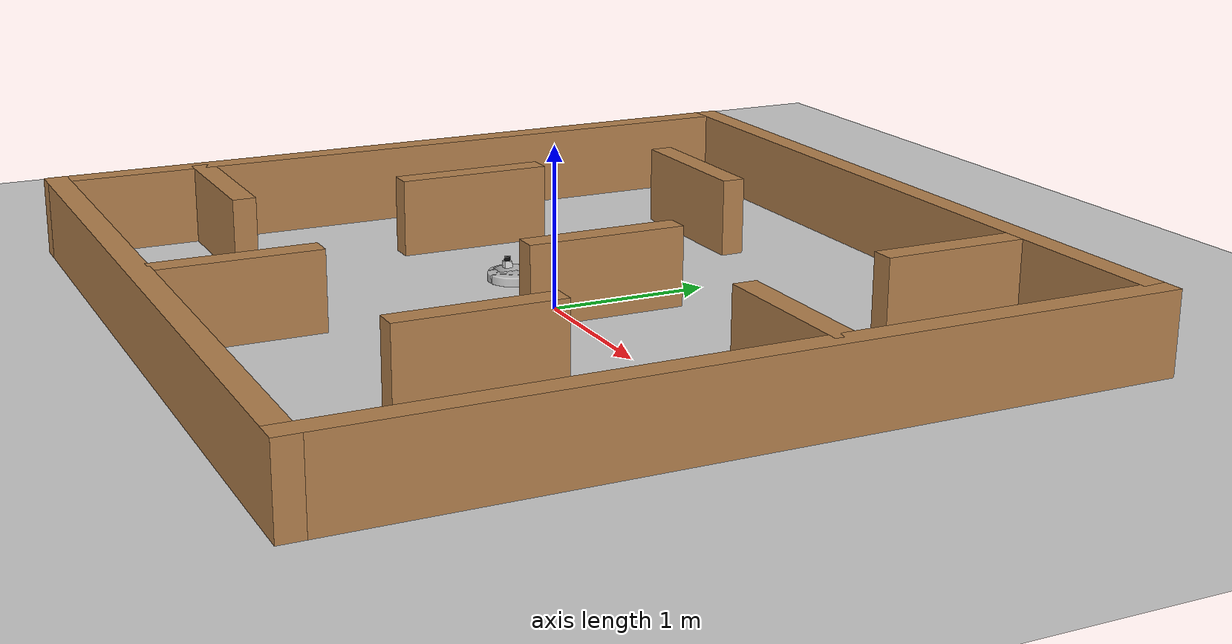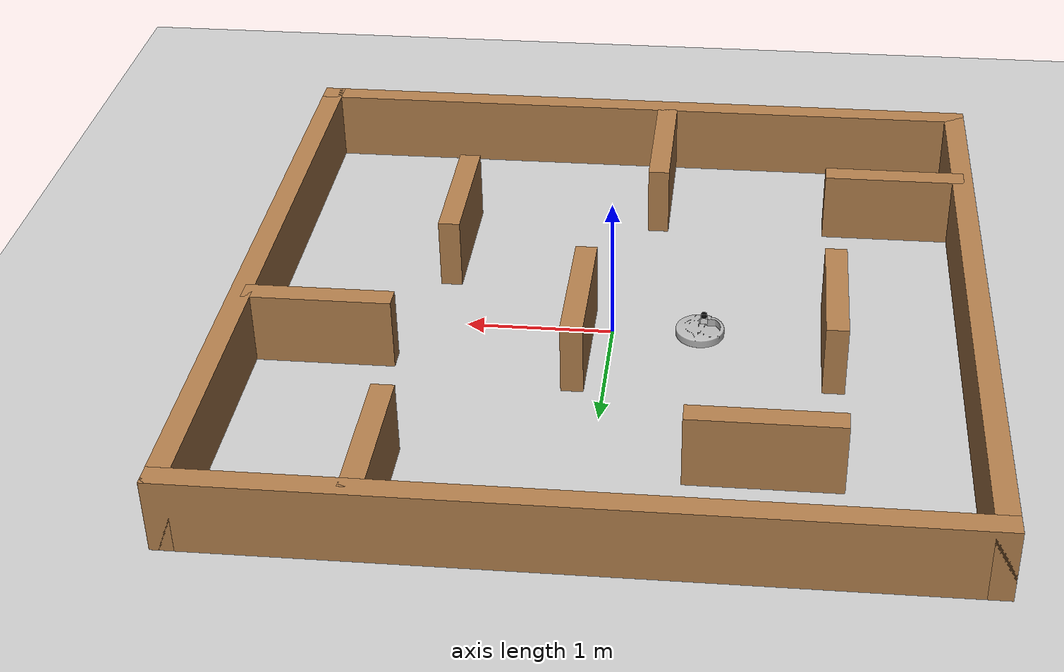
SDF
<?xml version="1.0"?>
<sdf version="1.5">
  <world name="default">
    <include>
      <uri>model://sun</uri>
    </include>
    <include>
      <uri>model://ground_plane</uri>
    </include>

    <include>
      <uri>model://turtlebot3_plaza</uri>
    </include>
      <include>
       <uri>model://sonny</uri>
       <pose>-0.6,0,0,0,0,0</pose>
      </include>
  </world>
</sdf>

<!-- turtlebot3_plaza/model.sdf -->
<sdf version='1.6'>
  <model name='turtlebot3_plaza'>
    <pose frame=''>0 0 0 0 -0 0</pose>
    <link name='Wall_0'>
      <collision name='Wall_0_Collision'>
        <geometry>
          <box>
            <size>5 0.15 0.5</size>
          </box>
        </geometry>
        <pose frame=''>0 0 0.25 0 -0 0</pose>
      </collision>
      <visual name='Wall_0_Visual'>
        <pose frame=''>0 0 0.25 0 -0 0</pose>
        <geometry>
          <box>
            <size>5 0.15 0.5</size>
          </box>
        </geometry>
        <material>
          <script>
            <uri>file://media/materials/scripts/gazebo.material</uri>
            <name>Gazebo/Wood</name>
          </script>
          <ambient>1 1 1 1</ambient>
        </material>
      </visual>
      <pose frame=''>-2.425 0 0 0 -0 1.5708</pose>
    </link>
    <link name='Wall_11'>
      <collision name='Wall_11_Collision'>
        <geometry>
          <box>
            <size>1 0.15 0.5</size>
          </box>
        </geometry>
        <pose frame=''>0 0 0.25 0 -0 0</pose>
      </collision>
      <visual name='Wall_11_Visual'>
        <pose frame=''>0 0 0.25 0 -0 0</pose>
        <geometry>
          <box>
            <size>1 0.15 0.5</size>
          </box>
        </geometry>
        <material>
          <script>
            <uri>file://media/materials/scripts/gazebo.material</uri>
            <name>Gazebo/Wood</name>
          </script>
          <ambient>1 1 1 1</ambient>
        </material>
      </visual>
      <pose frame=''>-1.937 -1.467 0 0 -0 0</pose>
    </link>
    <link name='Wall_13'>
      <collision name='Wall_13_Collision'>
        <geometry>
          <box>
            <size>1 0.15 0.5</size>
          </box>
        </geometry>
        <pose frame=''>0 0 0.25 0 -0 0</pose>
      </collision>
      <visual name='Wall_13_Visual'>
        <pose frame=''>0 0 0.25 0 -0 0</pose>
        <geometry>
          <box>
            <size>1 0.15 0.5</size>
          </box>
        </geometry>
        <material>
          <script>
            <uri>file://media/materials/scripts/gazebo.material</uri>
            <name>Gazebo/Wood</name>
          </script>
          <ambient>1 1 1 1</ambient>
        </material>
      </visual>
      <pose frame=''>-0.22 -1.866 0 0 0 -1.5708</pose>
    </link>
    <link name='Wall_15'>
      <collision name='Wall_15_Collision'>
        <geometry>
          <box>
            <size>1 0.15 0.5</size>
          </box>
        </geometry>
        <pose frame=''>0 0 0.25 0 -0 0</pose>
      </collision>
      <visual name='Wall_15_Visual'>
        <pose frame=''>0 0 0.25 0 -0 0</pose>
        <geometry>
          <box>
            <size>1 0.15 0.5</size>
          </box>
        </geometry>
        <material>
          <script>
            <uri>file://media/materials/scripts/gazebo.material</uri>
            <name>Gazebo/Wood</name>
          </script>
          <ambient>1 1 1 1</ambient>
        </material>
      </visual>
      <pose frame=''>1.195 -1.002 0 0 -0 1.5708</pose>
    </link>
    <link name='Wall_17'>
      <collision name='Wall_17_Collision'>
        <geometry>
          <box>
            <size>1 0.15 0.5</size>
          </box>
        </geometry>
        <pose frame=''>0 0 0.25 0 -0 0</pose>
      </collision>
      <visual name='Wall_17_Visual'>
        <pose frame=''>0 0 0.25 0 -0 0</pose>
        <geometry>
          <box>
            <size>1 0.15 0.5</size>
          </box>
        </geometry>
        <material>
          <script>
            <uri>file://media/materials/scripts/gazebo.material</uri>
            <name>Gazebo/Wood</name>
          </script>
          <ambient>1 1 1 1</ambient>
        </material>
      </visual>
      <pose frame=''>1.288 1.93 0 0 0 -1.5708</pose>
    </link>
    <link name='Wall_19'>
      <collision name='Wall_19_Collision'>
        <geometry>
          <box>
            <size>1 0.15 0.5</size>
          </box>
        </geometry>
        <pose frame=''>0 0 0.25 0 -0 0</pose>
      </collision>
      <visual name='Wall_19_Visual'>
        <pose frame=''>0 0 0.25 0 -0 0</pose>
        <geometry>
          <box>
            <size>1 0.15 0.5</size>
          </box>
        </geometry>
        <material>
          <script>
            <uri>file://media/materials/scripts/gazebo.material</uri>
            <name>Gazebo/Wood</name>
          </script>
          <ambient>1 1 1 1</ambient>
        </material>
      </visual>
      <pose frame=''>1.91128 0.4632 0 0 -0 0</pose>
    </link>
    <link name='Wall_2'>
      <collision name='Wall_2_Collision'>
        <geometry>
          <box>
            <size>5 0.15 0.5</size>
          </box>
        </geometry>
        <pose frame=''>0 0 0.25 0 -0 0</pose>
      </collision>
      <visual name='Wall_2_Visual'>
        <pose frame=''>0 0 0.25 0 -0 0</pose>
        <geometry>
          <box>
            <size>5 0.15 0.5</size>
          </box>
        </geometry>
        <material>
          <script>
            <uri>file://media/materials/scripts/gazebo.material</uri>
            <name>Gazebo/Wood</name>
          </script>
          <ambient>1 1 1 1</ambient>
        </material>
      </visual>
      <pose frame=''>0 2.425 0 0 -0 0</pose>
    </link>
    <link name='Wall_21'>
      <collision name='Wall_21_Collision'>
        <geometry>
          <box>
            <size>1 0.15 0.5</size>
          </box>
        </geometry>
        <pose frame=''>0 0 0.25 0 -0 0</pose>
      </collision>
      <visual name='Wall_21_Visual'>
        <pose frame=''>0 0 0.25 0 -0 0</pose>
        <geometry>
          <box>
            <size>1 0.15 0.5</size>
          </box>
        </geometry>
        <material>
          <script>
            <uri>file://media/materials/scripts/gazebo.material</uri>
            <name>Gazebo/Wood</name>
          </script>
          <ambient>1 1 1 1</ambient>
        </material>
      </visual>
      <pose frame=''>0.204 0.215 0 0 0 -1.5708</pose>
    </link>
    <link name='Wall_3'>
      <collision name='Wall_3_Collision'>
        <geometry>
          <box>
            <size>5 0.15 0.5</size>
          </box>
        </geometry>
        <pose frame=''>0 0 0.25 0 -0 0</pose>
      </collision>
      <visual name='Wall_3_Visual'>
        <pose frame=''>0 0 0.25 0 -0 0</pose>
        <geometry>
          <box>
            <size>5 0.15 0.5</size>
          </box>
        </geometry>
        <material>
          <script>
            <uri>file://media/materials/scripts/gazebo.material</uri>
            <name>Gazebo/Wood</name>
          </script>
          <ambient>1 1 1 1</ambient>
        </material>
      </visual>
      <pose frame=''>2.425 0 0 0 0 -1.5708</pose>
    </link>
    <link name='Wall_4'>
      <collision name='Wall_4_Collision'>
        <geometry>
          <box>
            <size>5 0.15 0.5</size>
          </box>
        </geometry>
        <pose frame=''>0 0 0.25 0 -0 0</pose>
      </collision>
      <visual name='Wall_4_Visual'>
        <pose frame=''>0 0 0.25 0 -0 0</pose>
        <geometry>
          <box>
            <size>5 0.15 0.5</size>
          </box>
        </geometry>
        <material>
          <script>
            <uri>file://media/materials/scripts/gazebo.material</uri>
            <name>Gazebo/Wood</name>
          </script>
          <ambient>1 1 1 1</ambient>
        </material>
      </visual>
      <pose frame=''>0 -2.425 0 0 -0 3.14159</pose>
    </link>
    <link name='Wall_7'>
      <collision name='Wall_7_Collision'>
        <geometry>
          <box>
            <size>1 0.15 0.5</size>
          </box>
        </geometry>
        <pose frame=''>0 0 0.25 0 -0 0</pose>
      </collision>
      <visual name='Wall_7_Visual'>
        <pose frame=''>0 0 0.25 0 -0 0</pose>
        <geometry>
          <box>
            <size>1 0.15 0.5</size>
          </box>
        </geometry>
        <material>
          <script>
            <uri>file://media/materials/scripts/gazebo.material</uri>
            <name>Gazebo/Wood</name>
          </script>
          <ambient>1 1 1 1</ambient>
        </material>
      </visual>
      <pose frame=''>-1.064 1.548 0 0 -0 0</pose>
    </link>
    <link name='Wall_9'>
      <collision name='Wall_9_Collision'>
        <geometry>
          <box>
            <size>1 0.15 0.5</size>
          </box>
        </geometry>
        <pose frame=''>0 0 0.25 0 -0 0</pose>
      </collision>
      <visual name='Wall_9_Visual'>
        <pose frame=''>0 0 0.25 0 -0 0</pose>
        <geometry>
          <box>
            <size>1 0.15 0.5</size>
          </box>
        </geometry>
        <material>
          <script>
            <uri>file://media/materials/scripts/gazebo.material</uri>
            <name>Gazebo/Wood</name>
          </script>
          <ambient>1 1 1 1</ambient>
        </material>
      </visual>
      <pose frame=''>-1.502 0.092 0 0 0 -1.5708</pose>
    </link>
    <static>1</static>
  </model>
</sdf>

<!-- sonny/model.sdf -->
<sdf version='1.6'>
  <model name='sonny'>
    <link name='base_link'>
      <inertial>
        <pose frame=''>0.001453 -0.000453 0.029787 0 -0 0</pose>
        <inertia>
          <ixx>0.05864</ixx>
          <ixy>0.000124</ixy>
          <ixz>0.000615</ixz>
          <iyy>0.058786</iyy>
          <iyz>1.4e-05</iyz>
          <izz>1.53244</izz>
        </inertia>
        <mass>2.234</mass>
      </inertial>
      <sensor name='left_cliff_sensor' type='ray'>
        <pose frame=''>0.07 0.14 0.027 0 1.57079 0</pose>
        <ray>
          <scan>
            <horizontal>
              <samples>1</samples>
              <resolution>1</resolution>
              <min_angle>0</min_angle>
              <max_angle>0</max_angle>
            </horizontal>
            <vertical>
              <samples>1</samples>
              <min_angle>0</min_angle>
              <max_angle>0</max_angle>
            </vertical>
          </scan>
          <range>
            <min>0.01</min>
            <max>0.04</max>
            <resolution>0.1</resolution>
          </range>
        </ray>
      </sensor>
      <sensor name='leftfront_cliff_sensor' type='ray'>
        <pose frame=''>0.15 0.04 0.027 0 1.57079 0</pose>
        <ray>
          <scan>
            <horizontal>
              <samples>1</samples>
              <resolution>1</resolution>
              <min_angle>0</min_angle>
              <max_angle>0</max_angle>
            </horizontal>
            <vertical>
              <samples>1</samples>
              <min_angle>0</min_angle>
              <max_angle>0</max_angle>
            </vertical>
          </scan>
          <range>
            <min>0.01</min>
            <max>0.04</max>
            <resolution>0.1</resolution>
          </range>
        </ray>
      </sensor>
      <sensor name='right_cliff_sensor' type='ray'>
        <pose frame=''>0.07 -0.14 0.027 0 1.57079 0</pose>
        <ray>
          <scan>
            <horizontal>
              <samples>1</samples>
              <resolution>1</resolution>
              <min_angle>0</min_angle>
              <max_angle>0</max_angle>
            </horizontal>
            <vertical>
              <samples>1</samples>
              <min_angle>0</min_angle>
              <max_angle>0</max_angle>
            </vertical>
          </scan>
          <range>
            <min>0.01</min>
            <max>0.04</max>
            <resolution>0.1</resolution>
          </range>
        </ray>
      </sensor>
      <sensor name='rightfront_cliff_sensor' type='ray'>
        <pose frame=''>0.15 -0.04 0.027 0 1.57079 0</pose>
        <ray>
          <scan>
            <horizontal>
              <samples>1</samples>
              <resolution>1</resolution>
              <min_angle>0</min_angle>
              <max_angle>0</max_angle>
            </horizontal>
            <vertical>
              <samples>1</samples>
              <min_angle>0</min_angle>
              <max_angle>0</max_angle>
            </vertical>
          </scan>
          <range>
            <min>0.01</min>
            <max>0.04</max>
            <resolution>0.1</resolution>
          </range>
        </ray>
      </sensor>
      <sensor name='wall_sensor' type='ray'>
        <pose frame=''>0.09 -0.12 0.059 0 0 -1</pose>
        <ray>
          <scan>
            <horizontal>
              <samples>1</samples>
              <resolution>1</resolution>
              <min_angle>0</min_angle>
              <max_angle>0</max_angle>
            </horizontal>
            <vertical>
              <samples>1</samples>
              <min_angle>0</min_angle>
              <max_angle>0</max_angle>
            </vertical>
          </scan>
          <range>
            <min>0.016</min>
            <max>0.04</max>
            <resolution>0.1</resolution>
          </range>
        </ray>
      </sensor>
      <pose frame=''>0 -0 0 0 -0 0</pose>
      <self_collide>0</self_collide>
      <enable_wind>0</enable_wind>
      <kinematic>0</kinematic>
      <visual name='base_visual'>
        <pose frame=''>0 0 0.0478 0 -0 0</pose>
        <geometry>
          <mesh>
            <uri>model://create/meshes/create_body.dae</uri>
          </mesh>
        </geometry>
        <transparency>0</transparency>
        <cast_shadows>1</cast_shadows>
        <material>
          <emissive>0 0 0 1</emissive>
        </material>
      </visual>
      <visual name='rear_wheel_visual'>
        <pose frame=''>-0.13 0 0.017 -0.000572 1.5707 1.57013</pose>
        <geometry>
          <sphere>
            <radius>0.0075</radius>
          </sphere>
        </geometry>
        <transparency>0</transparency>
        <cast_shadows>1</cast_shadows>
        <material>
          <emissive>0 0 0 1</emissive>
        </material>
      </visual>
      <visual name='front_wheel_visual'>
        <pose frame=''>0.13 0 0.017 -0.000572 1.5707 1.57013</pose>
        <geometry>
          <sphere>
            <radius>0.009</radius>
          </sphere>
        </geometry>
        <transparency>0</transparency>
        <cast_shadows>1</cast_shadows>
        <material>
          <emissive>0 0 0 1</emissive>
        </material>
      </visual>
      <collision name='base_collision'>
        <laser_retro>0</laser_retro>
        <max_contacts>10</max_contacts>
        <pose frame=''>0 0 0.0478 0 -0 0</pose>
        <geometry>
          <cylinder>
            <radius>0.016495</radius>
            <length>0.061163</length>
          </cylinder>
        </geometry>
        <surface>
          <friction>
            <ode>
              <mu>1</mu>
              <mu2>1</mu2>
              <fdir1>0 0 0</fdir1>
              <slip1>0</slip1>
              <slip2>0</slip2>
            </ode>
            <torsional>
              <coefficient>1</coefficient>
              <patch_radius>0</patch_radius>
              <surface_radius>0</surface_radius>
              <use_patch_radius>1</use_patch_radius>
              <ode>
                <slip>0</slip>
              </ode>
            </torsional>
          </friction>
          <bounce>
            <restitution_coefficient>0</restitution_coefficient>
            <threshold>1e+06</threshold>
          </bounce>
          <contact>
            <collide_without_contact>0</collide_without_contact>
            <collide_without_contact_bitmask>1</collide_without_contact_bitmask>
            <collide_bitmask>1</collide_bitmask>
            <ode>
              <soft_cfm>0</soft_cfm>
              <soft_erp>0.2</soft_erp>
              <kp>1e+13</kp>
              <kd>1</kd>
              <max_vel>0.01</max_vel>
              <min_depth>0</min_depth>
            </ode>
            <bullet>
              <split_impulse>1</split_impulse>
              <split_impulse_penetration_threshold>-0.01</split_impulse_penetration_threshold>
              <soft_cfm>0</soft_cfm>
              <soft_erp>0.2</soft_erp>
              <kp>1e+13</kp>
              <kd>1</kd>
            </bullet>
          </contact>
        </surface>
      </collision>
      <collision name='front_wheel_collision'>
        <laser_retro>0</laser_retro>
        <max_contacts>10</max_contacts>
        <pose frame=''>0.13 0 0.017 -0 1.5707 1.5707</pose>
        <geometry>
          <sphere>
            <radius>0.018</radius>
          </sphere>
        </geometry>
        <surface>
          <friction>
            <ode>
              <mu>0</mu>
              <mu2>0</mu2>
              <fdir1>0 0 0</fdir1>
              <slip1>0</slip1>
              <slip2>0</slip2>
            </ode>
            <torsional>
              <coefficient>1</coefficient>
              <patch_radius>0</patch_radius>
              <surface_radius>0</surface_radius>
              <use_patch_radius>1</use_patch_radius>
              <ode>
                <slip>0</slip>
              </ode>
            </torsional>
          </friction>
          <bounce>
            <restitution_coefficient>0</restitution_coefficient>
            <threshold>1e+06</threshold>
          </bounce>
          <contact>
            <collide_without_contact>0</collide_without_contact>
            <collide_without_contact_bitmask>1</collide_without_contact_bitmask>
            <collide_bitmask>1</collide_bitmask>
            <ode>
              <soft_cfm>0</soft_cfm>
              <soft_erp>0.2</soft_erp>
              <kp>1e+13</kp>
              <kd>1</kd>
              <max_vel>0.01</max_vel>
              <min_depth>0</min_depth>
            </ode>
            <bullet>
              <split_impulse>1</split_impulse>
              <split_impulse_penetration_threshold>-0.01</split_impulse_penetration_threshold>
              <soft_cfm>0</soft_cfm>
              <soft_erp>0.2</soft_erp>
              <kp>1e+13</kp>
              <kd>1</kd>
            </bullet>
          </contact>
        </surface>
      </collision>
      <collision name='rear_wheel_collision'>
        <laser_retro>0</laser_retro>
        <max_contacts>10</max_contacts>
        <pose frame=''>-0.13 0 0.017 -0 1.5707 1.5707</pose>
        <geometry>
          <sphere>
            <radius>0.015</radius>
          </sphere>
        </geometry>
        <surface>
          <friction>
            <ode>
              <mu>0</mu>
              <mu2>0</mu2>
              <fdir1>0 0 0</fdir1>
              <slip1>0</slip1>
              <slip2>0</slip2>
            </ode>
            <torsional>
              <coefficient>1</coefficient>
              <patch_radius>0</patch_radius>
              <surface_radius>0</surface_radius>
              <use_patch_radius>1</use_patch_radius>
              <ode>
                <slip>0</slip>
              </ode>
            </torsional>
          </friction>
          <bounce>
            <restitution_coefficient>0</restitution_coefficient>
            <threshold>1e+06</threshold>
          </bounce>
          <contact>
            <collide_without_contact>0</collide_without_contact>
            <collide_without_contact_bitmask>1</collide_without_contact_bitmask>
            <collide_bitmask>1</collide_bitmask>
            <ode>
              <soft_cfm>0</soft_cfm>
              <soft_erp>0.2</soft_erp>
              <kp>1e+13</kp>
              <kd>1</kd>
              <max_vel>0.01</max_vel>
              <min_depth>0</min_depth>
            </ode>
            <bullet>
              <split_impulse>1</split_impulse>
              <split_impulse_penetration_threshold>-0.01</split_impulse_penetration_threshold>
              <soft_cfm>0</soft_cfm>
              <soft_erp>0.2</soft_erp>
              <kp>1e+13</kp>
              <kd>1</kd>
            </bullet>
          </contact>
        </surface>
      </collision>
    </link>
    <link name='left_wheel'>
      <pose frame=''>-0 0.13 0.032 0 -0 0</pose>
      <inertial>
        <inertia>
          <ixx>0.001</ixx>
          <ixy>0</ixy>
          <ixz>0</ixz>
          <iyy>0.001</iyy>
          <iyz>0</iyz>
          <izz>0.001</izz>
        </inertia>
        <mass>0.01</mass>
      </inertial>
      <self_collide>0</self_collide>
      <enable_wind>0</enable_wind>
      <kinematic>0</kinematic>
      <visual name='visual'>
        <pose frame=''>0 0 0 -0.000572 1.5707 1.57013</pose>
        <geometry>
          <cylinder>
            <radius>0.033</radius>
            <length>0.023</length>
          </cylinder>
        </geometry>
        <transparency>0</transparency>
        <cast_shadows>1</cast_shadows>
      </visual>
      <collision name='collision'>
        <laser_retro>0</laser_retro>
        <max_contacts>10</max_contacts>
        <pose frame=''>0 0 0 -0 1.5707 1.5707</pose>
        <geometry>
          <cylinder>
            <radius>0.033</radius>
            <length>0.023</length>
          </cylinder>
        </geometry>
        <surface>
          <friction>
            <ode>
              <mu>10</mu>
              <mu2>10</mu2>
              <fdir1>0 0 0</fdir1>
              <slip1>0</slip1>
              <slip2>0</slip2>
            </ode>
            <torsional>
              <coefficient>1</coefficient>
              <patch_radius>0</patch_radius>
              <surface_radius>0</surface_radius>
              <use_patch_radius>1</use_patch_radius>
              <ode>
                <slip>0</slip>
              </ode>
            </torsional>
          </friction>
          <bounce>
            <restitution_coefficient>0</restitution_coefficient>
            <threshold>1e+06</threshold>
          </bounce>
          <contact>
            <collide_without_contact>0</collide_without_contact>
            <collide_without_contact_bitmask>1</collide_without_contact_bitmask>
            <collide_bitmask>1</collide_bitmask>
            <ode>
              <soft_cfm>0</soft_cfm>
              <soft_erp>0.2</soft_erp>
              <kp>1e+13</kp>
              <kd>1</kd>
              <max_vel>0.01</max_vel>
              <min_depth>0</min_depth>
            </ode>
            <bullet>
              <split_impulse>1</split_impulse>
              <split_impulse_penetration_threshold>-0.01</split_impulse_penetration_threshold>
              <soft_cfm>0</soft_cfm>
              <soft_erp>0.2</soft_erp>
              <kp>1e+13</kp>
              <kd>1</kd>
            </bullet>
          </contact>
        </surface>
      </collision>
    </link>
    <link name='right_wheel'>
      <pose frame=''>0 -0.13 0.032 0 -0 0</pose>
      <inertial>
        <inertia>
          <ixx>0.001</ixx>
          <ixy>0</ixy>
          <ixz>0</ixz>
          <iyy>0.001</iyy>
          <iyz>0</iyz>
          <izz>0.001</izz>
        </inertia>
        <mass>0.01</mass>
      </inertial>
      <self_collide>0</self_collide>
      <enable_wind>0</enable_wind>
      <kinematic>0</kinematic>
      <visual name='visual'>
        <pose frame=''>0 0 0 -0.000572 1.5707 1.57013</pose>
        <geometry>
          <cylinder>
            <radius>0.033</radius>
            <length>0.023</length>
          </cylinder>
        </geometry>
        <transparency>0</transparency>
        <cast_shadows>1</cast_shadows>
      </visual>
      <collision name='collision'>
        <laser_retro>0</laser_retro>
        <max_contacts>10</max_contacts>
        <pose frame=''>0 0 0 -0 1.5707 1.5707</pose>
        <geometry>
          <cylinder>
            <radius>0.033</radius>
            <length>0.023</length>
          </cylinder>
        </geometry>
        <surface>
          <friction>
            <ode>
              <mu>10</mu>
              <mu2>10</mu2>
              <fdir1>0 0 0</fdir1>
              <slip1>0</slip1>
              <slip2>0</slip2>
            </ode>
            <torsional>
              <coefficient>1</coefficient>
              <patch_radius>0</patch_radius>
              <surface_radius>0</surface_radius>
              <use_patch_radius>1</use_patch_radius>
              <ode>
                <slip>0</slip>
              </ode>
            </torsional>
          </friction>
          <bounce>
            <restitution_coefficient>0</restitution_coefficient>
            <threshold>1e+06</threshold>
          </bounce>
          <contact>
            <collide_without_contact>0</collide_without_contact>
            <collide_without_contact_bitmask>1</collide_without_contact_bitmask>
            <collide_bitmask>1</collide_bitmask>
            <ode>
              <soft_cfm>0</soft_cfm>
              <soft_erp>0.2</soft_erp>
              <kp>1e+13</kp>
              <kd>1</kd>
              <max_vel>0.01</max_vel>
              <min_depth>0</min_depth>
            </ode>
            <bullet>
              <split_impulse>1</split_impulse>
              <split_impulse_penetration_threshold>-0.01</split_impulse_penetration_threshold>
              <soft_cfm>0</soft_cfm>
              <soft_erp>0.2</soft_erp>
              <kp>1e+13</kp>
              <kd>1</kd>
            </bullet>
          </contact>
        </surface>
      </collision>
    </link>
    <model name='hokuyo'>
      <pose frame=''>-0.023651 -0.033465 0.129836 0 -0 1e-06</pose>
      <link name='link'>
        <inertial>
          <mass>0.1</mass>
          <inertia>
            <ixx>1</ixx>
            <ixy>0</ixy>
            <ixz>0</ixz>
            <iyy>1</iyy>
            <iyz>0</iyz>
            <izz>1</izz>
          </inertia>
        </inertial>
        <visual name='visual'>
          <geometry>
            <mesh>
              <uri>model://hokuyo/meshes/hokuyo.dae</uri>
            </mesh>
          </geometry>
        </visual>
        <collision name='collision-base'>
          <pose frame=''>0 0 -0.0145 0 -0 0</pose>
          <geometry>
            <box>
              <size>0.05 0.05 0.041</size>
            </box>
          </geometry>
          <max_contacts>10</max_contacts>
          <surface>
            <contact>
              <ode/>
            </contact>
            <bounce/>
            <friction>
              <torsional>
                <ode/>
              </torsional>
              <ode/>
            </friction>
          </surface>
        </collision>
        <collision name='collision-top'>
          <pose frame=''>0 0 0.0205 0 -0 0</pose>
          <geometry>
            <cylinder>
              <radius>0.021</radius>
              <length>0.029</length>
            </cylinder>
          </geometry>
          <max_contacts>10</max_contacts>
          <surface>
            <contact>
              <ode/>
            </contact>
            <bounce/>
            <friction>
              <torsional>
                <ode/>
              </torsional>
              <ode/>
            </friction>
          </surface>
        </collision>
        <sensor name='laser' type='ray'>
          <pose frame=''>0.01 0 0.0175 0 -0 0</pose>
          <ray>
            <scan>
              <horizontal>
                <samples>640</samples>
                <resolution>1</resolution>
                <min_angle>-2.26889</min_angle>
                <max_angle>2.2689</max_angle>
              </horizontal>
             </scan>
            <range>
              <min>0.08</min>
              <max>10</max>
              <resolution>0.01</resolution>
            </range>
          </ray>
          <plugin name='laser' filename='libgazebo_ros_laser.so'>
            <topicName>/scan</topicName>
            <frameName>base_link</frameName>
            <robotBaseFrame>base_link</robotBaseFrame>
          </plugin>
          <always_on>1</always_on>
          <update_rate>30</update_rate>
          <visualize>0</visualize>
        </sensor>
        <self_collide>0</self_collide>
        <enable_wind>0</enable_wind>
        <kinematic>0</kinematic>
      </link>
    </model>
    <joint name='hokuyo_joint' type='fixed'>
      <parent>base_link</parent>
      <child>hokuyo::link</child>
      <pose frame=''>0 0 0 0 -0 0</pose>
      <physics>
        <ode>
          <limit>
            <cfm>0</cfm>
            <erp>0.2</erp>
          </limit>
          <suspension>
            <cfm>0</cfm>
            <erp>0.2</erp>
          </suspension>
        </ode>
      </physics>
    </joint>
    <joint name='left_wheel' type='revolute'>
      <parent>base_link</parent>
      <child>left_wheel</child>
      <pose frame=''>0 0 0 0 -0 0</pose>
      <axis>
        <xyz>0 1 0</xyz>
        <use_parent_model_frame>1</use_parent_model_frame>
        <limit>
          <lower>-1e+16</lower>
          <upper>1e+16</upper>
          <effort>-1</effort>
          <velocity>-1</velocity>
        </limit>
        <dynamics>
          <spring_reference>0</spring_reference>
          <spring_stiffness>0</spring_stiffness>
          <damping>0</damping>
          <friction>0</friction>
        </dynamics>
      </axis>
      <physics>
        <ode>
          <limit>
            <cfm>0</cfm>
            <erp>0.2</erp>
          </limit>
          <suspension>
            <cfm>0</cfm>
            <erp>0.2</erp>
          </suspension>
        </ode>
      </physics>
    </joint>
    <joint name='right_wheel' type='revolute'>
      <parent>base_link</parent>
      <child>right_wheel</child>
      <pose frame=''>0 0 0 0 -0 0</pose>
      <axis>
        <xyz>0 1 0</xyz>
        <use_parent_model_frame>1</use_parent_model_frame>
        <limit>
          <lower>-1e+16</lower>
          <upper>1e+16</upper>
          <effort>-1</effort>
          <velocity>-1</velocity>
        </limit>
        <dynamics>
          <spring_reference>0</spring_reference>
          <spring_stiffness>0</spring_stiffness>
          <damping>0</damping>
          <friction>0</friction>
        </dynamics>
      </axis>
      <physics>
        <ode>
          <limit>
            <cfm>0</cfm>
            <erp>0.2</erp>
          </limit>
          <suspension>
            <cfm>0</cfm>
            <erp>0.2</erp>
          </suspension>
        </ode>
      </physics>
    </joint>
    <static>0</static>
    <allow_auto_disable>1</allow_auto_disable>
    <plugin name='differential_drive_controller' filename='libgazebo_ros_diff_drive.so'>
      <alwaysOn>1</alwaysOn>
      <updateRate>100</updateRate>
      <leftJoint>right_wheel</leftJoint>
      <rightJoint>left_wheel</rightJoint>
      <wheelSeparation>0.5380</wheelSeparation>
      <wheelDiameter>0.2410</wheelDiameter>
      <torque>20</torque>
      <commandTopic>/cmd_vel</commandTopic>
      <odometryTopic>odom</odometryTopic>
      <odometryFrame>odom</odometryFrame>
      <robotBaseFrame>base_link</robotBaseFrame>
      <publishWheelTF>1</publishWheelTF>
      <publishWheelJointState>1</publishWheelJointState>
    </plugin>
  </model>
</sdf>
